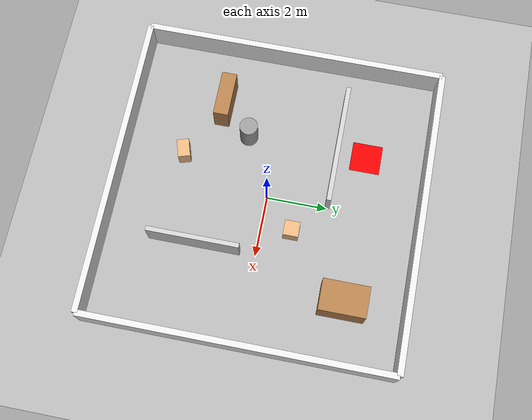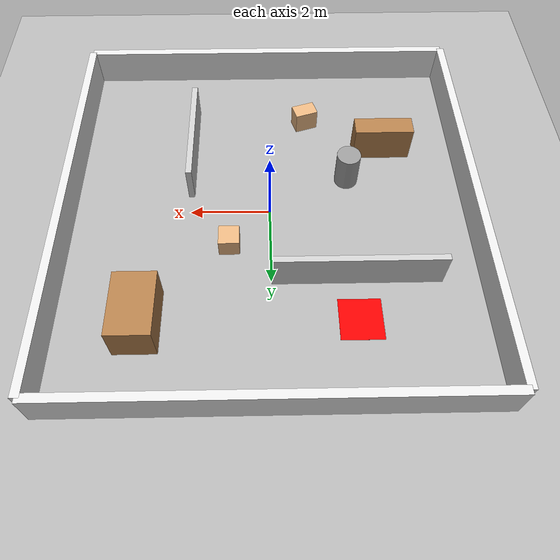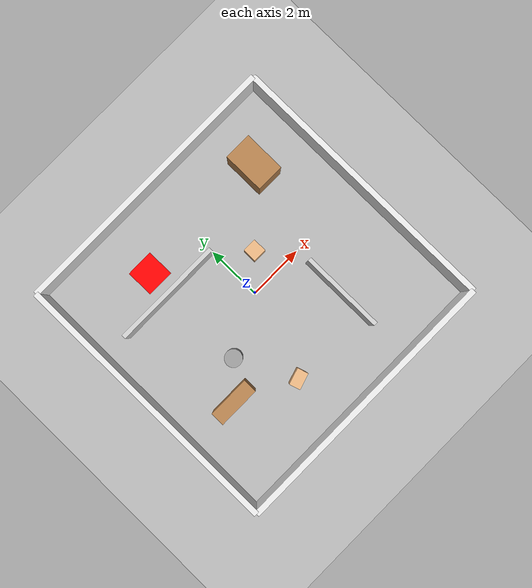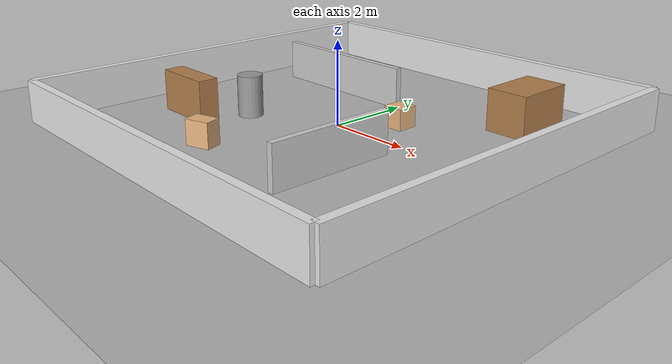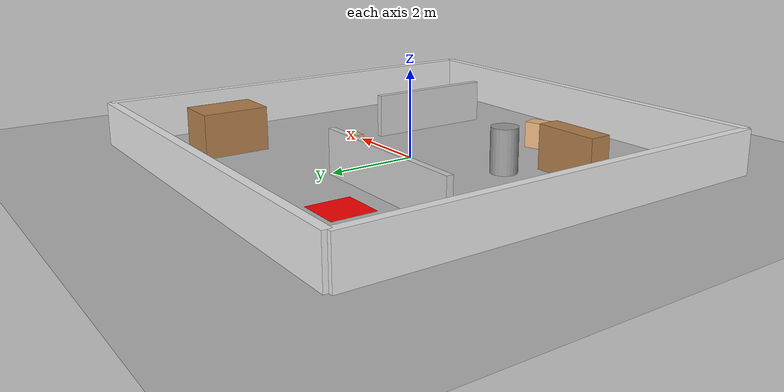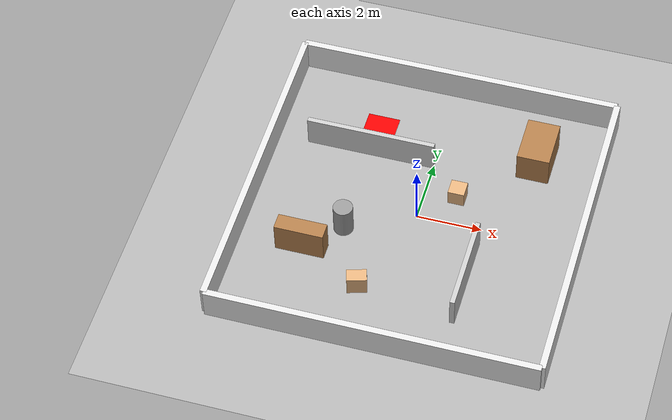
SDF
<?xml version="1.0" ?>
<sdf version="1.8">
  <world name="warehouse">

    <!-- Физика -->
    <physics name="1ms" type="ignored">
      <max_step_size>0.001</max_step_size>
      <real_time_factor>1.0</real_time_factor>
    </physics>

    <!-- Плагины мира -->
    <plugin filename="gz-sim-physics-system" name="gz::sim::systems::Physics"/>
    <plugin filename="gz-sim-user-commands-system" name="gz::sim::systems::UserCommands"/>
    <plugin filename="gz-sim-scene-broadcaster-system" name="gz::sim::systems::SceneBroadcaster"/>
    <plugin filename="gz-sim-sensors-system" name="gz::sim::systems::Sensors">
      <render_engine>ogre2</render_engine>
    </plugin>

    <!-- Освещение -->
    <light type="directional" name="sun">
      <cast_shadows>true</cast_shadows>
      <pose>0 0 10 0 0 0</pose>
      <diffuse>0.8 0.8 0.8 1</diffuse>
      <specular>0.2 0.2 0.2 1</specular>
      <direction>-0.5 0.1 -0.9</direction>
    </light>

    <!-- Пол -->
    <model name="ground_plane">
      <static>true</static>
      <link name="link">
        <collision name="collision">
          <geometry>
            <plane>
              <normal>0 0 1</normal>
              <size>20 20</size>
            </plane>
          </geometry>
        </collision>
        <visual name="visual">
          <geometry>
            <plane>
              <normal>0 0 1</normal>
              <size>20 20</size>
            </plane>
          </geometry>
          <material>
            <ambient>0.6 0.6 0.6 1</ambient>
            <diffuse>0.7 0.7 0.7 1</diffuse>
          </material>
        </visual>
      </link>
    </model>

    <!-- Северная стена -->
    <model name="wall_north">
      <static>true</static>
      <pose>0 5 0.5 0 0 0</pose>
      <link name="link">
        <collision name="collision">
          <geometry>
            <box><size>10 0.2 1.0</size></box>
          </geometry>
        </collision>
        <visual name="visual">
          <geometry>
            <box><size>10 0.2 1.0</size></box>
          </geometry>
          <material>
            <ambient>0.8 0.8 0.8 1</ambient>
            <diffuse>0.9 0.9 0.9 1</diffuse>
          </material>
        </visual>
      </link>
    </model>

    <!-- Южная стена -->
    <model name="wall_south">
      <static>true</static>
      <pose>0 -5 0.5 0 0 0</pose>
      <link name="link">
        <collision name="collision">
          <geometry>
            <box><size>10 0.2 1.0</size></box>
          </geometry>
        </collision>
        <visual name="visual">
          <geometry>
            <box><size>10 0.2 1.0</size></box>
          </geometry>
          <material>
            <ambient>0.8 0.8 0.8 1</ambient>
            <diffuse>0.9 0.9 0.9 1</diffuse>
          </material>
        </visual>
      </link>
    </model>

    <!-- Западная стена -->
    <model name="wall_west">
      <static>true</static>
      <pose>-5 0 0.5 0 0 1.5708</pose>
      <link name="link">
        <collision name="collision">
          <geometry>
            <box><size>10 0.2 1.0</size></box>
          </geometry>
        </collision>
        <visual name="visual">
          <geometry>
            <box><size>10 0.2 1.0</size></box>
          </geometry>
          <material>
            <ambient>0.8 0.8 0.8 1</ambient>
            <diffuse>0.9 0.9 0.9 1</diffuse>
          </material>
        </visual>
      </link>
    </model>

    <!-- Восточная стена -->
    <model name="wall_east">
      <static>true</static>
      <pose>5 0 0.5 0 0 1.5708</pose>
      <link name="link">
        <collision name="collision">
          <geometry>
            <box><size>10 0.2 1.0</size></box>
          </geometry>
        </collision>
        <visual name="visual">
          <geometry>
            <box><size>10 0.2 1.0</size></box>
          </geometry>
          <material>
            <ambient>0.8 0.8 0.8 1</ambient>
            <diffuse>0.9 0.9 0.9 1</diffuse>
          </material>
        </visual>
      </link>
    </model>

    <!-- Перегородка 1 -->
    <model name="partition_1">
      <static>true</static>
      <pose>-2 2 0.5 0 0 0</pose>
      <link name="link">
        <collision name="collision">
          <geometry>
            <box><size>4 0.15 1.0</size></box>
          </geometry>
        </collision>
        <visual name="visual">
          <geometry>
            <box><size>4 0.15 1.0</size></box>
          </geometry>
          <material>
            <ambient>0.7 0.7 0.7 1</ambient>
            <diffuse>0.8 0.8 0.8 1</diffuse>
          </material>
        </visual>
      </link>
    </model>

    <!-- Перегородка 2 -->
    <model name="partition_2">
      <static>true</static>
      <pose>2 -2 0.5 0 0 1.5708</pose>
      <link name="link">
        <collision name="collision">
          <geometry>
            <box><size>3 0.15 1.0</size></box>
          </geometry>
        </collision>
        <visual name="visual">
          <geometry>
            <box><size>3 0.15 1.0</size></box>
          </geometry>
          <material>
            <ambient>0.7 0.7 0.7 1</ambient>
            <diffuse>0.8 0.8 0.8 1</diffuse>
          </material>
        </visual>
      </link>
    </model>

    <!-- Стеллаж 1 -->
    <model name="shelf_1">
      <static>true</static>
      <pose>-3 -2 0.5 0 0 0</pose>
      <link name="link">
        <collision name="collision">
          <geometry>
            <box><size>1.5 0.5 1.0</size></box>
          </geometry>
        </collision>
        <visual name="visual">
          <geometry>
            <box><size>1.5 0.5 1.0</size></box>
          </geometry>
          <material>
            <ambient>0.6 0.4 0.2 1</ambient>
            <diffuse>0.7 0.5 0.3 1</diffuse>
          </material>
        </visual>
      </link>
    </model>

    <!-- Стеллаж 2 -->
    <model name="shelf_2">
      <static>true</static>
      <pose>3 3 0.5 0 0 0</pose>
      <link name="link">
        <collision name="collision">
          <geometry>
            <box><size>1.0 1.5 1.0</size></box>
          </geometry>
        </collision>
        <visual name="visual">
          <geometry>
            <box><size>1.0 1.5 1.0</size></box>
          </geometry>
          <material>
            <ambient>0.6 0.4 0.2 1</ambient>
            <diffuse>0.7 0.5 0.3 1</diffuse>
          </material>
        </visual>
      </link>
    </model>

    <!-- Коробка 1 -->
    <model name="box_1">
      <static>true</static>
      <pose>1 1 0.25 0 0 0</pose>
      <link name="link">
        <collision name="collision">
          <geometry>
            <box><size>0.5 0.5 0.5</size></box>
          </geometry>
        </collision>
        <visual name="visual">
          <geometry>
            <box><size>0.5 0.5 0.5</size></box>
          </geometry>
          <material>
            <ambient>0.8 0.6 0.4 1</ambient>
            <diffuse>0.9 0.7 0.5 1</diffuse>
          </material>
        </visual>
      </link>
    </model>

    <!-- Коробка 2 -->
    <model name="box_2">
      <static>true</static>
      <pose>-1 -3 0.3 0 0 0.3</pose>
      <link name="link">
        <collision name="collision">
          <geometry>
            <box><size>0.6 0.4 0.6</size></box>
          </geometry>
        </collision>
        <visual name="visual">
          <geometry>
            <box><size>0.6 0.4 0.6</size></box>
          </geometry>
          <material>
            <ambient>0.8 0.6 0.4 1</ambient>
            <diffuse>0.9 0.7 0.5 1</diffuse>
          </material>
        </visual>
      </link>
    </model>

    <!-- Колонна -->
    <model name="pillar">
      <static>true</static>
      <pose>-2.0 -1.0 0.5 0 0 0</pose>
      <link name="link">
        <collision name="collision">
          <geometry>
            <cylinder>
              <radius>0.3</radius>
              <length>1.0</length>
            </cylinder>
          </geometry>
        </collision>
        <visual name="visual">
          <geometry>
            <cylinder>
              <radius>0.3</radius>
              <length>1.0</length>
            </cylinder>
          </geometry>
          <material>
            <ambient>0.5 0.5 0.5 1</ambient>
            <diffuse>0.6 0.6 0.6 1</diffuse>
          </material>
        </visual>
      </link>
    </model>

    <!-- Зарядная станция -->
    <model name = "charging_station">
      <static>true</static>
      <pose>-2.0 3.0 0.01 0 0 0</pose>

      <link name="platform">
      <visual name="base_visual">
        <geometry>
          <box>
            <size>1.0 1.0 0.001</size>
          </box>
        </geometry>
        <material>
          <ambient>1.0 0.0 0.0 1.0</ambient>
          <diffuse>1.0 0.0 0.0 1.0</diffuse>
          <specular>0.5 0.5 0.5 1.0</specular>
        </material>
      </visual>
       </link>
    </model>

  </world>
</sdf>
